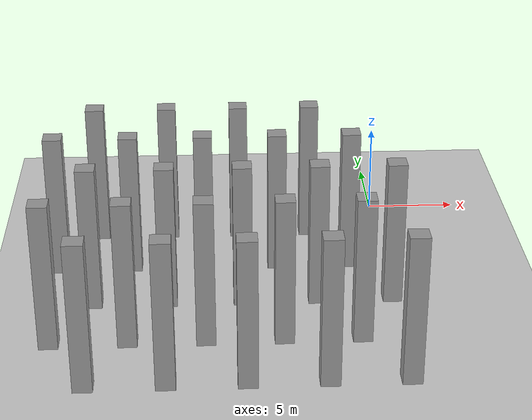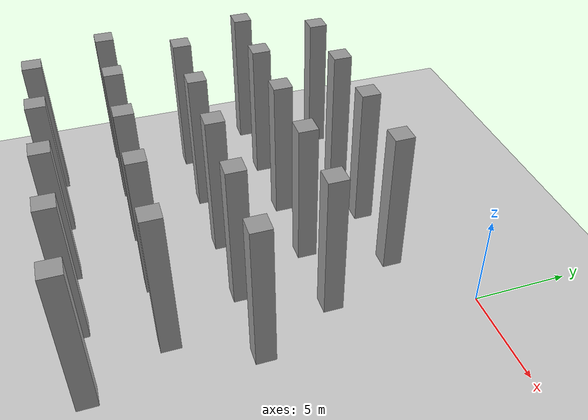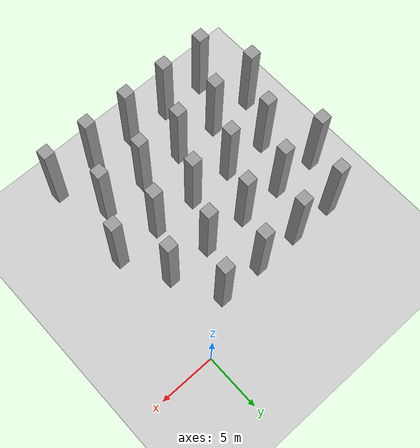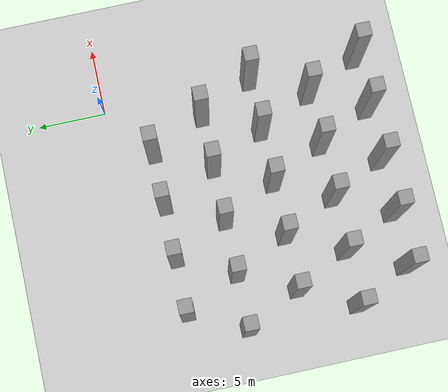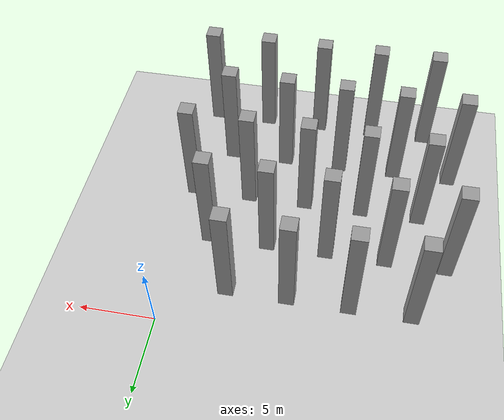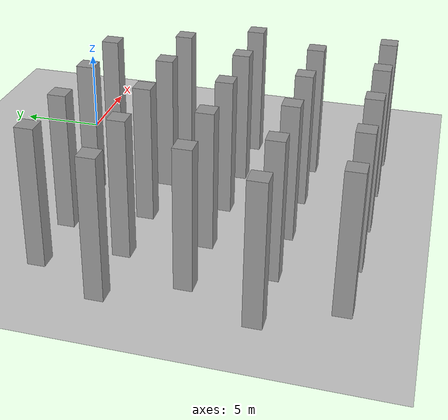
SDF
<sdf version="1.7">
 <world name="default">
  <model name="ground_plane">
   <static>1</static>
   <link name="link">
    <collision name="collision">
     <geometry><plane><normal>0 0 1</normal><size>100 100</size></plane></geometry>
     <surface>
      <contact><collide_bitmask>65535</collide_bitmask></contact>
      <friction><ode><mu>100</mu><mu2>50</mu2></ode></friction>
     </surface>
    </collision>
    <visual name="visual">
     <cast_shadows>0</cast_shadows>
     <geometry><plane><normal>0 0 1</normal><size>100 100</size></plane></geometry>
     <material>
      <script><uri>file://media/materials/scripts/gazebo.material</uri><name>Gazebo/Grey</name></script>
     </material>
    </visual>
   </link>
  </model>
  <model name="unit_box_static1">
   <link name="link">
    <inertial>
     <mass>1</mass>
     <inertia>
      <ixx>0.166667</ixx>
      <ixy>0</ixy>
      <ixz>0</ixz>
      <iyy>0.166667</iyy>
      <iyz>0</iyz>
      <izz>0.166667</izz>
     </inertia>
    </inertial>
    <visual name="visual">
     <geometry><box><size>1 1 8</size></box></geometry>
     <material>
      <script><name>Gazebo/Grey</name><uri>file://media/materials/scripts/gazebo.material</uri></script>
      <shader type="pixel"/>
     </material>
    </visual>
    <collision name="collision">
     <geometry><box><size>1 1 8</size></box></geometry>
     <surface>
      <friction>
       <ode><mu>1</mu><mu2>1</mu2><fdir1>0 0 0</fdir1><slip1>0</slip1><slip2>0</slip2></ode>
       <torsional>
        <coefficient>1</coefficient>
        <patch_radius>0</patch_radius>
        <surface_radius>0</surface_radius>
        <use_patch_radius>1</use_patch_radius>
        <ode><slip>0</slip></ode>
       </torsional>
      </friction>
      <bounce><restitution_coefficient>0</restitution_coefficient><threshold>1e+06</threshold></bounce>
      <contact>
       <collide_without_contact>0</collide_without_contact>
       <collide_without_contact_bitmask>1</collide_without_contact_bitmask>
       <collide_bitmask>1</collide_bitmask>
       <ode>
        <soft_cfm>0</soft_cfm>
        <soft_erp>0.2</soft_erp>
        <kp>1e+13</kp>
        <kd>1</kd>
        <max_vel>0.01</max_vel>
        <min_depth>0</min_depth>
       </ode>
       <bullet>
        <split_impulse>1</split_impulse>
        <split_impulse_penetration_threshold>-0.01</split_impulse_penetration_threshold>
        <soft_cfm>0</soft_cfm>
        <soft_erp>0.2</soft_erp>
        <kp>1e+13</kp>
        <kd>1</kd>
       </bullet>
      </contact>
     </surface>
    </collision>
   </link>
   <static>1</static>
   <pose>-16 -19 4 0 -0 0</pose>
  </model>
  <model name="unit_box_static2">
   <link name="link">
    <inertial>
     <mass>1</mass>
     <inertia>
      <ixx>0.166667</ixx>
      <ixy>0</ixy>
      <ixz>0</ixz>
      <iyy>0.166667</iyy>
      <iyz>0</iyz>
      <izz>0.166667</izz>
     </inertia>
    </inertial>
    <visual name="visual">
     <geometry><box><size>1 1 8</size></box></geometry>
     <material>
      <script><name>Gazebo/Grey</name><uri>file://media/materials/scripts/gazebo.material</uri></script>
      <shader type="pixel"/>
     </material>
    </visual>
    <collision name="collision">
     <geometry><box><size>1 1 8</size></box></geometry>
     <surface>
      <friction>
       <ode><mu>1</mu><mu2>1</mu2><fdir1>0 0 0</fdir1><slip1>0</slip1><slip2>0</slip2></ode>
       <torsional>
        <coefficient>1</coefficient>
        <patch_radius>0</patch_radius>
        <surface_radius>0</surface_radius>
        <use_patch_radius>1</use_patch_radius>
        <ode><slip>0</slip></ode>
       </torsional>
      </friction>
      <bounce><restitution_coefficient>0</restitution_coefficient><threshold>1e+06</threshold></bounce>
      <contact>
       <collide_without_contact>0</collide_without_contact>
       <collide_without_contact_bitmask>1</collide_without_contact_bitmask>
       <collide_bitmask>1</collide_bitmask>
       <ode>
        <soft_cfm>0</soft_cfm>
        <soft_erp>0.2</soft_erp>
        <kp>1e+13</kp>
        <kd>1</kd>
        <max_vel>0.01</max_vel>
        <min_depth>0</min_depth>
       </ode>
       <bullet>
        <split_impulse>1</split_impulse>
        <split_impulse_penetration_threshold>-0.01</split_impulse_penetration_threshold>
        <soft_cfm>0</soft_cfm>
        <soft_erp>0.2</soft_erp>
        <kp>1e+13</kp>
        <kd>1</kd>
       </bullet>
      </contact>
     </surface>
    </collision>
   </link>
   <static>1</static>
   <pose>-12 -19 4 0 -0 0</pose>
  </model>
  <model name="unit_box_static3">
   <link name="link">
    <inertial>
     <mass>1</mass>
     <inertia>
      <ixx>0.166667</ixx>
      <ixy>0</ixy>
      <ixz>0</ixz>
      <iyy>0.166667</iyy>
      <iyz>0</iyz>
      <izz>0.166667</izz>
     </inertia>
    </inertial>
    <visual name="visual">
     <geometry><box><size>1 1 8</size></box></geometry>
     <material>
      <script><name>Gazebo/Grey</name><uri>file://media/materials/scripts/gazebo.material</uri></script>
      <shader type="pixel"/>
     </material>
    </visual>
    <collision name="collision">
     <geometry><box><size>1 1 8</size></box></geometry>
     <surface>
      <friction>
       <ode><mu>1</mu><mu2>1</mu2><fdir1>0 0 0</fdir1><slip1>0</slip1><slip2>0</slip2></ode>
       <torsional>
        <coefficient>1</coefficient>
        <patch_radius>0</patch_radius>
        <surface_radius>0</surface_radius>
        <use_patch_radius>1</use_patch_radius>
        <ode><slip>0</slip></ode>
       </torsional>
      </friction>
      <bounce><restitution_coefficient>0</restitution_coefficient><threshold>1e+06</threshold></bounce>
      <contact>
       <collide_without_contact>0</collide_without_contact>
       <collide_without_contact_bitmask>1</collide_without_contact_bitmask>
       <collide_bitmask>1</collide_bitmask>
       <ode>
        <soft_cfm>0</soft_cfm>
        <soft_erp>0.2</soft_erp>
        <kp>1e+13</kp>
        <kd>1</kd>
        <max_vel>0.01</max_vel>
        <min_depth>0</min_depth>
       </ode>
       <bullet>
        <split_impulse>1</split_impulse>
        <split_impulse_penetration_threshold>-0.01</split_impulse_penetration_threshold>
        <soft_cfm>0</soft_cfm>
        <soft_erp>0.2</soft_erp>
        <kp>1e+13</kp>
        <kd>1</kd>
       </bullet>
      </contact>
     </surface>
    </collision>
   </link>
   <static>1</static>
   <pose>-8 -19 4 0 -0 0</pose>
  </model>
  <model name="unit_box_static4">
   <link name="link">
    <inertial>
     <mass>1</mass>
     <inertia>
      <ixx>0.166667</ixx>
      <ixy>0</ixy>
      <ixz>0</ixz>
      <iyy>0.166667</iyy>
      <iyz>0</iyz>
      <izz>0.166667</izz>
     </inertia>
    </inertial>
    <visual name="visual">
     <geometry><box><size>1 1 8</size></box></geometry>
     <material>
      <script><name>Gazebo/Grey</name><uri>file://media/materials/scripts/gazebo.material</uri></script>
      <shader type="pixel"/>
     </material>
    </visual>
    <collision name="collision">
     <geometry><box><size>1 1 8</size></box></geometry>
     <surface>
      <friction>
       <ode><mu>1</mu><mu2>1</mu2><fdir1>0 0 0</fdir1><slip1>0</slip1><slip2>0</slip2></ode>
       <torsional>
        <coefficient>1</coefficient>
        <patch_radius>0</patch_radius>
        <surface_radius>0</surface_radius>
        <use_patch_radius>1</use_patch_radius>
        <ode><slip>0</slip></ode>
       </torsional>
      </friction>
      <bounce><restitution_coefficient>0</restitution_coefficient><threshold>1e+06</threshold></bounce>
      <contact>
       <collide_without_contact>0</collide_without_contact>
       <collide_without_contact_bitmask>1</collide_without_contact_bitmask>
       <collide_bitmask>1</collide_bitmask>
       <ode>
        <soft_cfm>0</soft_cfm>
        <soft_erp>0.2</soft_erp>
        <kp>1e+13</kp>
        <kd>1</kd>
        <max_vel>0.01</max_vel>
        <min_depth>0</min_depth>
       </ode>
       <bullet>
        <split_impulse>1</split_impulse>
        <split_impulse_penetration_threshold>-0.01</split_impulse_penetration_threshold>
        <soft_cfm>0</soft_cfm>
        <soft_erp>0.2</soft_erp>
        <kp>1e+13</kp>
        <kd>1</kd>
       </bullet>
      </contact>
     </surface>
    </collision>
   </link>
   <static>1</static>
   <pose>-4 -19 4 0 -0 0</pose>
  </model>
  <model name="unit_box_static5">
   <link name="link">
    <inertial>
     <mass>1</mass>
     <inertia>
      <ixx>0.166667</ixx>
      <ixy>0</ixy>
      <ixz>0</ixz>
      <iyy>0.166667</iyy>
      <iyz>0</iyz>
      <izz>0.166667</izz>
     </inertia>
    </inertial>
    <visual name="visual">
     <geometry><box><size>1 1 8</size></box></geometry>
     <material>
      <script><name>Gazebo/Grey</name><uri>file://media/materials/scripts/gazebo.material</uri></script>
      <shader type="pixel"/>
     </material>
    </visual>
    <collision name="collision">
     <geometry><box><size>1 1 8</size></box></geometry>
     <surface>
      <friction>
       <ode><mu>1</mu><mu2>1</mu2><fdir1>0 0 0</fdir1><slip1>0</slip1><slip2>0</slip2></ode>
       <torsional>
        <coefficient>1</coefficient>
        <patch_radius>0</patch_radius>
        <surface_radius>0</surface_radius>
        <use_patch_radius>1</use_patch_radius>
        <ode><slip>0</slip></ode>
       </torsional>
      </friction>
      <bounce><restitution_coefficient>0</restitution_coefficient><threshold>1e+06</threshold></bounce>
      <contact>
       <collide_without_contact>0</collide_without_contact>
       <collide_without_contact_bitmask>1</collide_without_contact_bitmask>
       <collide_bitmask>1</collide_bitmask>
       <ode>
        <soft_cfm>0</soft_cfm>
        <soft_erp>0.2</soft_erp>
        <kp>1e+13</kp>
        <kd>1</kd>
        <max_vel>0.01</max_vel>
        <min_depth>0</min_depth>
       </ode>
       <bullet>
        <split_impulse>1</split_impulse>
        <split_impulse_penetration_threshold>-0.01</split_impulse_penetration_threshold>
        <soft_cfm>0</soft_cfm>
        <soft_erp>0.2</soft_erp>
        <kp>1e+13</kp>
        <kd>1</kd>
       </bullet>
      </contact>
     </surface>
    </collision>
   </link>
   <static>1</static>
   <pose>0 -19 4 0 -0 0</pose>
  </model>
  <model name="unit_box_static10">
   <link name="link">
    <inertial>
     <mass>1</mass>
     <inertia>
      <ixx>0.166667</ixx>
      <ixy>0</ixy>
      <ixz>0</ixz>
      <iyy>0.166667</iyy>
      <iyz>0</iyz>
      <izz>0.166667</izz>
     </inertia>
    </inertial>
    <visual name="visual">
     <geometry><box><size>1 1 8</size></box></geometry>
     <material>
      <script><name>Gazebo/Grey</name><uri>file://media/materials/scripts/gazebo.material</uri></script>
      <shader type="pixel"/>
     </material>
    </visual>
    <collision name="collision">
     <geometry><box><size>1 1 8</size></box></geometry>
     <surface>
      <friction>
       <ode><mu>1</mu><mu2>1</mu2><fdir1>0 0 0</fdir1><slip1>0</slip1><slip2>0</slip2></ode>
       <torsional>
        <coefficient>1</coefficient>
        <patch_radius>0</patch_radius>
        <surface_radius>0</surface_radius>
        <use_patch_radius>1</use_patch_radius>
        <ode><slip>0</slip></ode>
       </torsional>
      </friction>
      <bounce><restitution_coefficient>0</restitution_coefficient><threshold>1e+06</threshold></bounce>
      <contact>
       <collide_without_contact>0</collide_without_contact>
       <collide_without_contact_bitmask>1</collide_without_contact_bitmask>
       <collide_bitmask>1</collide_bitmask>
       <ode>
        <soft_cfm>0</soft_cfm>
        <soft_erp>0.2</soft_erp>
        <kp>1e+13</kp>
        <kd>1</kd>
        <max_vel>0.01</max_vel>
        <min_depth>0</min_depth>
       </ode>
       <bullet>
        <split_impulse>1</split_impulse>
        <split_impulse_penetration_threshold>-0.01</split_impulse_penetration_threshold>
        <soft_cfm>0</soft_cfm>
        <soft_erp>0.2</soft_erp>
        <kp>1e+13</kp>
        <kd>1</kd>
       </bullet>
      </contact>
     </surface>
    </collision>
   </link>
   <static>1</static>
   <pose>-18 -15 4 0 -0 0</pose>
  </model>
  <model name="unit_box_static11">
   <link name="link">
    <inertial>
     <mass>1</mass>
     <inertia>
      <ixx>0.166667</ixx>
      <ixy>0</ixy>
      <ixz>0</ixz>
      <iyy>0.166667</iyy>
      <iyz>0</iyz>
      <izz>0.166667</izz>
     </inertia>
    </inertial>
    <visual name="visual">
     <geometry><box><size>1 1 8</size></box></geometry>
     <material>
      <script><name>Gazebo/Grey</name><uri>file://media/materials/scripts/gazebo.material</uri></script>
      <shader type="pixel"/>
     </material>
    </visual>
    <collision name="collision">
     <geometry><box><size>1 1 8</size></box></geometry>
     <surface>
      <friction>
       <ode><mu>1</mu><mu2>1</mu2><fdir1>0 0 0</fdir1><slip1>0</slip1><slip2>0</slip2></ode>
       <torsional>
        <coefficient>1</coefficient>
        <patch_radius>0</patch_radius>
        <surface_radius>0</surface_radius>
        <use_patch_radius>1</use_patch_radius>
        <ode><slip>0</slip></ode>
       </torsional>
      </friction>
      <bounce><restitution_coefficient>0</restitution_coefficient><threshold>1e+06</threshold></bounce>
      <contact>
       <collide_without_contact>0</collide_without_contact>
       <collide_without_contact_bitmask>1</collide_without_contact_bitmask>
       <collide_bitmask>1</collide_bitmask>
       <ode>
        <soft_cfm>0</soft_cfm>
        <soft_erp>0.2</soft_erp>
        <kp>1e+13</kp>
        <kd>1</kd>
        <max_vel>0.01</max_vel>
        <min_depth>0</min_depth>
       </ode>
       <bullet>
        <split_impulse>1</split_impulse>
        <split_impulse_penetration_threshold>-0.01</split_impulse_penetration_threshold>
        <soft_cfm>0</soft_cfm>
        <soft_erp>0.2</soft_erp>
        <kp>1e+13</kp>
        <kd>1</kd>
       </bullet>
      </contact>
     </surface>
    </collision>
   </link>
   <static>1</static>
   <pose>-14 -15 4 0 -0 0</pose>
  </model>
  <model name="unit_box_static12">
   <link name="link">
    <inertial>
     <mass>1</mass>
     <inertia>
      <ixx>0.166667</ixx>
      <ixy>0</ixy>
      <ixz>0</ixz>
      <iyy>0.166667</iyy>
      <iyz>0</iyz>
      <izz>0.166667</izz>
     </inertia>
    </inertial>
    <visual name="visual">
     <geometry><box><size>1 1 8</size></box></geometry>
     <material>
      <script><name>Gazebo/Grey</name><uri>file://media/materials/scripts/gazebo.material</uri></script>
      <shader type="pixel"/>
     </material>
    </visual>
    <collision name="collision">
     <geometry><box><size>1 1 8</size></box></geometry>
     <surface>
      <friction>
       <ode><mu>1</mu><mu2>1</mu2><fdir1>0 0 0</fdir1><slip1>0</slip1><slip2>0</slip2></ode>
       <torsional>
        <coefficient>1</coefficient>
        <patch_radius>0</patch_radius>
        <surface_radius>0</surface_radius>
        <use_patch_radius>1</use_patch_radius>
        <ode><slip>0</slip></ode>
       </torsional>
      </friction>
      <bounce><restitution_coefficient>0</restitution_coefficient><threshold>1e+06</threshold></bounce>
      <contact>
       <collide_without_contact>0</collide_without_contact>
       <collide_without_contact_bitmask>1</collide_without_contact_bitmask>
       <collide_bitmask>1</collide_bitmask>
       <ode>
        <soft_cfm>0</soft_cfm>
        <soft_erp>0.2</soft_erp>
        <kp>1e+13</kp>
        <kd>1</kd>
        <max_vel>0.01</max_vel>
        <min_depth>0</min_depth>
       </ode>
       <bullet>
        <split_impulse>1</split_impulse>
        <split_impulse_penetration_threshold>-0.01</split_impulse_penetration_threshold>
        <soft_cfm>0</soft_cfm>
        <soft_erp>0.2</soft_erp>
        <kp>1e+13</kp>
        <kd>1</kd>
       </bullet>
      </contact>
     </surface>
    </collision>
   </link>
   <static>1</static>
   <pose>-10 -15 4 0 -0 0</pose>
  </model>
  <model name="unit_box_static13">
   <link name="link">
    <inertial>
     <mass>1</mass>
     <inertia>
      <ixx>0.166667</ixx>
      <ixy>0</ixy>
      <ixz>0</ixz>
      <iyy>0.166667</iyy>
      <iyz>0</iyz>
      <izz>0.166667</izz>
     </inertia>
    </inertial>
    <visual name="visual">
     <geometry><box><size>1 1 8</size></box></geometry>
     <material>
      <script><name>Gazebo/Grey</name><uri>file://media/materials/scripts/gazebo.material</uri></script>
      <shader type="pixel"/>
     </material>
    </visual>
    <collision name="collision">
     <geometry><box><size>1 1 8</size></box></geometry>
     <surface>
      <friction>
       <ode><mu>1</mu><mu2>1</mu2><fdir1>0 0 0</fdir1><slip1>0</slip1><slip2>0</slip2></ode>
       <torsional>
        <coefficient>1</coefficient>
        <patch_radius>0</patch_radius>
        <surface_radius>0</surface_radius>
        <use_patch_radius>1</use_patch_radius>
        <ode><slip>0</slip></ode>
       </torsional>
      </friction>
      <bounce><restitution_coefficient>0</restitution_coefficient><threshold>1e+06</threshold></bounce>
      <contact>
       <collide_without_contact>0</collide_without_contact>
       <collide_without_contact_bitmask>1</collide_without_contact_bitmask>
       <collide_bitmask>1</collide_bitmask>
       <ode>
        <soft_cfm>0</soft_cfm>
        <soft_erp>0.2</soft_erp>
        <kp>1e+13</kp>
        <kd>1</kd>
        <max_vel>0.01</max_vel>
        <min_depth>0</min_depth>
       </ode>
       <bullet>
        <split_impulse>1</split_impulse>
        <split_impulse_penetration_threshold>-0.01</split_impulse_penetration_threshold>
        <soft_cfm>0</soft_cfm>
        <soft_erp>0.2</soft_erp>
        <kp>1e+13</kp>
        <kd>1</kd>
       </bullet>
      </contact>
     </surface>
    </collision>
   </link>
   <static>1</static>
   <pose>-6 -15 4 0 -0 0</pose>
  </model>
  <model name="unit_box_static14">
   <link name="link">
    <inertial>
     <mass>1</mass>
     <inertia>
      <ixx>0.166667</ixx>
      <ixy>0</ixy>
      <ixz>0</ixz>
      <iyy>0.166667</iyy>
      <iyz>0</iyz>
      <izz>0.166667</izz>
     </inertia>
    </inertial>
    <visual name="visual">
     <geometry><box><size>1 1 8</size></box></geometry>
     <material>
      <script><name>Gazebo/Grey</name><uri>file://media/materials/scripts/gazebo.material</uri></script>
      <shader type="pixel"/>
     </material>
    </visual>
    <collision name="collision">
     <geometry><box><size>1 1 8</size></box></geometry>
     <surface>
      <friction>
       <ode><mu>1</mu><mu2>1</mu2><fdir1>0 0 0</fdir1><slip1>0</slip1><slip2>0</slip2></ode>
       <torsional>
        <coefficient>1</coefficient>
        <patch_radius>0</patch_radius>
        <surface_radius>0</surface_radius>
        <use_patch_radius>1</use_patch_radius>
        <ode><slip>0</slip></ode>
       </torsional>
      </friction>
      <bounce><restitution_coefficient>0</restitution_coefficient><threshold>1e+06</threshold></bounce>
      <contact>
       <collide_without_contact>0</collide_without_contact>
       <collide_without_contact_bitmask>1</collide_without_contact_bitmask>
       <collide_bitmask>1</collide_bitmask>
       <ode>
        <soft_cfm>0</soft_cfm>
        <soft_erp>0.2</soft_erp>
        <kp>1e+13</kp>
        <kd>1</kd>
        <max_vel>0.01</max_vel>
        <min_depth>0</min_depth>
       </ode>
       <bullet>
        <split_impulse>1</split_impulse>
        <split_impulse_penetration_threshold>-0.01</split_impulse_penetration_threshold>
        <soft_cfm>0</soft_cfm>
        <soft_erp>0.2</soft_erp>
        <kp>1e+13</kp>
        <kd>1</kd>
       </bullet>
      </contact>
     </surface>
    </collision>
   </link>
   <static>1</static>
   <pose>-2 -15 4 0 -0 0</pose>
  </model>
  <model name="unit_box_static20">
   <link name="link">
    <inertial>
     <mass>1</mass>
     <inertia>
      <ixx>0.166667</ixx>
      <ixy>0</ixy>
      <ixz>0</ixz>
      <iyy>0.166667</iyy>
      <iyz>0</iyz>
      <izz>0.166667</izz>
     </inertia>
    </inertial>
    <visual name="visual">
     <geometry><box><size>1 1 8</size></box></geometry>
     <material>
      <script><name>Gazebo/Grey</name><uri>file://media/materials/scripts/gazebo.material</uri></script>
      <shader type="pixel"/>
     </material>
    </visual>
    <collision name="collision">
     <geometry><box><size>1 1 8</size></box></geometry>
     <surface>
      <friction>
       <ode><mu>1</mu><mu2>1</mu2><fdir1>0 0 0</fdir1><slip1>0</slip1><slip2>0</slip2></ode>
       <torsional>
        <coefficient>1</coefficient>
        <patch_radius>0</patch_radius>
        <surface_radius>0</surface_radius>
        <use_patch_radius>1</use_patch_radius>
        <ode><slip>0</slip></ode>
       </torsional>
      </friction>
      <bounce><restitution_coefficient>0</restitution_coefficient><threshold>1e+06</threshold></bounce>
      <contact>
       <collide_without_contact>0</collide_without_contact>
       <collide_without_contact_bitmask>1</collide_without_contact_bitmask>
       <collide_bitmask>1</collide_bitmask>
       <ode>
        <soft_cfm>0</soft_cfm>
        <soft_erp>0.2</soft_erp>
        <kp>1e+13</kp>
        <kd>1</kd>
        <max_vel>0.01</max_vel>
        <min_depth>0</min_depth>
       </ode>
       <bullet>
        <split_impulse>1</split_impulse>
        <split_impulse_penetration_threshold>-0.01</split_impulse_penetration_threshold>
        <soft_cfm>0</soft_cfm>
        <soft_erp>0.2</soft_erp>
        <kp>1e+13</kp>
        <kd>1</kd>
       </bullet>
      </contact>
     </surface>
    </collision>
   </link>
   <static>1</static>
   <pose>-16 -11 4 0 -0 0</pose>
  </model>
  <model name="unit_box_static21">
   <link name="link">
    <inertial>
     <mass>1</mass>
     <inertia>
      <ixx>0.166667</ixx>
      <ixy>0</ixy>
      <ixz>0</ixz>
      <iyy>0.166667</iyy>
      <iyz>0</iyz>
      <izz>0.166667</izz>
     </inertia>
    </inertial>
    <visual name="visual">
     <geometry><box><size>1 1 8</size></box></geometry>
     <material>
      <script><name>Gazebo/Grey</name><uri>file://media/materials/scripts/gazebo.material</uri></script>
      <shader type="pixel"/>
     </material>
    </visual>
    <collision name="collision">
     <geometry><box><size>1 1 8</size></box></geometry>
     <surface>
      <friction>
       <ode><mu>1</mu><mu2>1</mu2><fdir1>0 0 0</fdir1><slip1>0</slip1><slip2>0</slip2></ode>
       <torsional>
        <coefficient>1</coefficient>
        <patch_radius>0</patch_radius>
        <surface_radius>0</surface_radius>
        <use_patch_radius>1</use_patch_radius>
        <ode><slip>0</slip></ode>
       </torsional>
      </friction>
      <bounce><restitution_coefficient>0</restitution_coefficient><threshold>1e+06</threshold></bounce>
      <contact>
       <collide_without_contact>0</collide_without_contact>
       <collide_without_contact_bitmask>1</collide_without_contact_bitmask>
       <collide_bitmask>1</collide_bitmask>
       <ode>
        <soft_cfm>0</soft_cfm>
        <soft_erp>0.2</soft_erp>
        <kp>1e+13</kp>
        <kd>1</kd>
        <max_vel>0.01</max_vel>
        <min_depth>0</min_depth>
       </ode>
       <bullet>
        <split_impulse>1</split_impulse>
        <split_impulse_penetration_threshold>-0.01</split_impulse_penetration_threshold>
        <soft_cfm>0</soft_cfm>
        <soft_erp>0.2</soft_erp>
        <kp>1e+13</kp>
        <kd>1</kd>
       </bullet>
      </contact>
     </surface>
    </collision>
   </link>
   <static>1</static>
   <pose>-12 -11 4 0 -0 0</pose>
  </model>
  <model name="unit_box_static22">
   <link name="link">
    <inertial>
     <mass>1</mass>
     <inertia>
      <ixx>0.166667</ixx>
      <ixy>0</ixy>
      <ixz>0</ixz>
      <iyy>0.166667</iyy>
      <iyz>0</iyz>
      <izz>0.166667</izz>
     </inertia>
    </inertial>
    <visual name="visual">
     <geometry><box><size>1 1 8</size></box></geometry>
     <material>
      <script><name>Gazebo/Grey</name><uri>file://media/materials/scripts/gazebo.material</uri></script>
      <shader type="pixel"/>
     </material>
    </visual>
    <collision name="collision">
     <geometry><box><size>1 1 8</size></box></geometry>
     <surface>
      <friction>
       <ode><mu>1</mu><mu2>1</mu2><fdir1>0 0 0</fdir1><slip1>0</slip1><slip2>0</slip2></ode>
       <torsional>
        <coefficient>1</coefficient>
        <patch_radius>0</patch_radius>
        <surface_radius>0</surface_radius>
        <use_patch_radius>1</use_patch_radius>
        <ode><slip>0</slip></ode>
       </torsional>
      </friction>
      <bounce><restitution_coefficient>0</restitution_coefficient><threshold>1e+06</threshold></bounce>
      <contact>
       <collide_without_contact>0</collide_without_contact>
       <collide_without_contact_bitmask>1</collide_without_contact_bitmask>
       <collide_bitmask>1</collide_bitmask>
       <ode>
        <soft_cfm>0</soft_cfm>
        <soft_erp>0.2</soft_erp>
        <kp>1e+13</kp>
        <kd>1</kd>
        <max_vel>0.01</max_vel>
        <min_depth>0</min_depth>
       </ode>
       <bullet>
        <split_impulse>1</split_impulse>
        <split_impulse_penetration_threshold>-0.01</split_impulse_penetration_threshold>
        <soft_cfm>0</soft_cfm>
        <soft_erp>0.2</soft_erp>
        <kp>1e+13</kp>
        <kd>1</kd>
       </bullet>
      </contact>
     </surface>
    </collision>
   </link>
   <static>1</static>
   <pose>-8 -11 4 0 -0 0</pose>
  </model>
  <model name="unit_box_static23">
   <link name="link">
    <inertial>
     <mass>1</mass>
     <inertia>
      <ixx>0.166667</ixx>
      <ixy>0</ixy>
      <ixz>0</ixz>
      <iyy>0.166667</iyy>
      <iyz>0</iyz>
      <izz>0.166667</izz>
     </inertia>
    </inertial>
    <visual name="visual">
     <geometry><box><size>1 1 8</size></box></geometry>
     <material>
      <script><name>Gazebo/Grey</name><uri>file://media/materials/scripts/gazebo.material</uri></script>
      <shader type="pixel"/>
     </material>
    </visual>
    <collision name="collision">
     <geometry><box><size>1 1 8</size></box></geometry>
     <surface>
      <friction>
       <ode><mu>1</mu><mu2>1</mu2><fdir1>0 0 0</fdir1><slip1>0</slip1><slip2>0</slip2></ode>
       <torsional>
        <coefficient>1</coefficient>
        <patch_radius>0</patch_radius>
        <surface_radius>0</surface_radius>
        <use_patch_radius>1</use_patch_radius>
        <ode><slip>0</slip></ode>
       </torsional>
      </friction>
      <bounce><restitution_coefficient>0</restitution_coefficient><threshold>1e+06</threshold></bounce>
      <contact>
       <collide_without_contact>0</collide_without_contact>
       <collide_without_contact_bitmask>1</collide_without_contact_bitmask>
       <collide_bitmask>1</collide_bitmask>
       <ode>
        <soft_cfm>0</soft_cfm>
        <soft_erp>0.2</soft_erp>
        <kp>1e+13</kp>
        <kd>1</kd>
        <max_vel>0.01</max_vel>
        <min_depth>0</min_depth>
       </ode>
       <bullet>
        <split_impulse>1</split_impulse>
        <split_impulse_penetration_threshold>-0.01</split_impulse_penetration_threshold>
        <soft_cfm>0</soft_cfm>
        <soft_erp>0.2</soft_erp>
        <kp>1e+13</kp>
        <kd>1</kd>
       </bullet>
      </contact>
     </surface>
    </collision>
   </link>
   <static>1</static>
   <pose>-4 -11 4 0 -0 0</pose>
  </model>
  <model name="unit_box_static24">
   <link name="link">
    <inertial>
     <mass>1</mass>
     <inertia>
      <ixx>0.166667</ixx>
      <ixy>0</ixy>
      <ixz>0</ixz>
      <iyy>0.166667</iyy>
      <iyz>0</iyz>
      <izz>0.166667</izz>
     </inertia>
    </inertial>
    <visual name="visual">
     <geometry><box><size>1 1 8</size></box></geometry>
     <material>
      <script><name>Gazebo/Grey</name><uri>file://media/materials/scripts/gazebo.material</uri></script>
      <shader type="pixel"/>
     </material>
    </visual>
    <collision name="collision">
     <geometry><box><size>1 1 8</size></box></geometry>
     <surface>
      <friction>
       <ode><mu>1</mu><mu2>1</mu2><fdir1>0 0 0</fdir1><slip1>0</slip1><slip2>0</slip2></ode>
       <torsional>
        <coefficient>1</coefficient>
        <patch_radius>0</patch_radius>
        <surface_radius>0</surface_radius>
        <use_patch_radius>1</use_patch_radius>
        <ode><slip>0</slip></ode>
       </torsional>
      </friction>
      <bounce><restitution_coefficient>0</restitution_coefficient><threshold>1e+06</threshold></bounce>
      <contact>
       <collide_without_contact>0</collide_without_contact>
       <collide_without_contact_bitmask>1</collide_without_contact_bitmask>
       <collide_bitmask>1</collide_bitmask>
       <ode>
        <soft_cfm>0</soft_cfm>
        <soft_erp>0.2</soft_erp>
        <kp>1e+13</kp>
        <kd>1</kd>
        <max_vel>0.01</max_vel>
        <min_depth>0</min_depth>
       </ode>
       <bullet>
        <split_impulse>1</split_impulse>
        <split_impulse_penetration_threshold>-0.01</split_impulse_penetration_threshold>
        <soft_cfm>0</soft_cfm>
        <soft_erp>0.2</soft_erp>
        <kp>1e+13</kp>
        <kd>1</kd>
       </bullet>
      </contact>
     </surface>
    </collision>
   </link>
   <static>1</static>
   <pose>0 -11 4 0 -0 0</pose>
  </model>
  <model name="unit_box_static29">
   <link name="link">
    <inertial>
     <mass>1</mass>
     <inertia>
      <ixx>0.166667</ixx>
      <ixy>0</ixy>
      <ixz>0</ixz>
      <iyy>0.166667</iyy>
      <iyz>0</iyz>
      <izz>0.166667</izz>
     </inertia>
    </inertial>
    <visual name="visual">
     <geometry><box><size>1 1 8</size></box></geometry>
     <material>
      <script><name>Gazebo/Grey</name><uri>file://media/materials/scripts/gazebo.material</uri></script>
      <shader type="pixel"/>
     </material>
    </visual>
    <collision name="collision">
     <geometry><box><size>1 1 8</size></box></geometry>
     <surface>
      <friction>
       <ode><mu>1</mu><mu2>1</mu2><fdir1>0 0 0</fdir1><slip1>0</slip1><slip2>0</slip2></ode>
       <torsional>
        <coefficient>1</coefficient>
        <patch_radius>0</patch_radius>
        <surface_radius>0</surface_radius>
        <use_patch_radius>1</use_patch_radius>
        <ode><slip>0</slip></ode>
       </torsional>
      </friction>
      <bounce><restitution_coefficient>0</restitution_coefficient><threshold>1e+06</threshold></bounce>
      <contact>
       <collide_without_contact>0</collide_without_contact>
       <collide_without_contact_bitmask>1</collide_without_contact_bitmask>
       <collide_bitmask>1</collide_bitmask>
       <ode>
        <soft_cfm>0</soft_cfm>
        <soft_erp>0.2</soft_erp>
        <kp>1e+13</kp>
        <kd>1</kd>
        <max_vel>0.01</max_vel>
        <min_depth>0</min_depth>
       </ode>
       <bullet>
        <split_impulse>1</split_impulse>
        <split_impulse_penetration_threshold>-0.01</split_impulse_penetration_threshold>
        <soft_cfm>0</soft_cfm>
        <soft_erp>0.2</soft_erp>
        <kp>1e+13</kp>
        <kd>1</kd>
       </bullet>
      </contact>
     </surface>
    </collision>
   </link>
   <static>1</static>
   <pose>-18 -7 4 0 -0 0</pose>
  </model>
  <model name="unit_box_static30">
   <link name="link">
    <inertial>
     <mass>1</mass>
     <inertia>
      <ixx>0.166667</ixx>
      <ixy>0</ixy>
      <ixz>0</ixz>
      <iyy>0.166667</iyy>
      <iyz>0</iyz>
      <izz>0.166667</izz>
     </inertia>
    </inertial>
    <visual name="visual">
     <geometry><box><size>1 1 8</size></box></geometry>
     <material>
      <script><name>Gazebo/Grey</name><uri>file://media/materials/scripts/gazebo.material</uri></script>
      <shader type="pixel"/>
     </material>
    </visual>
    <collision name="collision">
     <geometry><box><size>1 1 8</size></box></geometry>
     <surface>
      <friction>
       <ode><mu>1</mu><mu2>1</mu2><fdir1>0 0 0</fdir1><slip1>0</slip1><slip2>0</slip2></ode>
       <torsional>
        <coefficient>1</coefficient>
        <patch_radius>0</patch_radius>
        <surface_radius>0</surface_radius>
        <use_patch_radius>1</use_patch_radius>
        <ode><slip>0</slip></ode>
       </torsional>
      </friction>
      <bounce><restitution_coefficient>0</restitution_coefficient><threshold>1e+06</threshold></bounce>
      <contact>
       <collide_without_contact>0</collide_without_contact>
       <collide_without_contact_bitmask>1</collide_without_contact_bitmask>
       <collide_bitmask>1</collide_bitmask>
       <ode>
        <soft_cfm>0</soft_cfm>
        <soft_erp>0.2</soft_erp>
        <kp>1e+13</kp>
        <kd>1</kd>
        <max_vel>0.01</max_vel>
        <min_depth>0</min_depth>
       </ode>
       <bullet>
        <split_impulse>1</split_impulse>
        <split_impulse_penetration_threshold>-0.01</split_impulse_penetration_threshold>
        <soft_cfm>0</soft_cfm>
        <soft_erp>0.2</soft_erp>
        <kp>1e+13</kp>
        <kd>1</kd>
       </bullet>
      </contact>
     </surface>
    </collision>
   </link>
   <static>1</static>
   <pose>-14 -7 4 0 -0 0</pose>
  </model>
  <model name="unit_box_static31">
   <link name="link">
    <inertial>
     <mass>1</mass>
     <inertia>
      <ixx>0.166667</ixx>
      <ixy>0</ixy>
      <ixz>0</ixz>
      <iyy>0.166667</iyy>
      <iyz>0</iyz>
      <izz>0.166667</izz>
     </inertia>
    </inertial>
    <visual name="visual">
     <geometry><box><size>1 1 8</size></box></geometry>
     <material>
      <script><name>Gazebo/Grey</name><uri>file://media/materials/scripts/gazebo.material</uri></script>
      <shader type="pixel"/>
     </material>
    </visual>
    <collision name="collision">
     <geometry><box><size>1 1 8</size></box></geometry>
     <surface>
      <friction>
       <ode><mu>1</mu><mu2>1</mu2><fdir1>0 0 0</fdir1><slip1>0</slip1><slip2>0</slip2></ode>
       <torsional>
        <coefficient>1</coefficient>
        <patch_radius>0</patch_radius>
        <surface_radius>0</surface_radius>
        <use_patch_radius>1</use_patch_radius>
        <ode><slip>0</slip></ode>
       </torsional>
      </friction>
      <bounce><restitution_coefficient>0</restitution_coefficient><threshold>1e+06</threshold></bounce>
      <contact>
       <collide_without_contact>0</collide_without_contact>
       <collide_without_contact_bitmask>1</collide_without_contact_bitmask>
       <collide_bitmask>1</collide_bitmask>
       <ode>
        <soft_cfm>0</soft_cfm>
        <soft_erp>0.2</soft_erp>
        <kp>1e+13</kp>
        <kd>1</kd>
        <max_vel>0.01</max_vel>
        <min_depth>0</min_depth>
       </ode>
       <bullet>
        <split_impulse>1</split_impulse>
        <split_impulse_penetration_threshold>-0.01</split_impulse_penetration_threshold>
        <soft_cfm>0</soft_cfm>
        <soft_erp>0.2</soft_erp>
        <kp>1e+13</kp>
        <kd>1</kd>
       </bullet>
      </contact>
     </surface>
    </collision>
   </link>
   <static>1</static>
   <pose>-10 -7 4 0 -0 0</pose>
  </model>
  <model name="unit_box_static32">
   <link name="link">
    <inertial>
     <mass>1</mass>
     <inertia>
      <ixx>0.166667</ixx>
      <ixy>0</ixy>
      <ixz>0</ixz>
      <iyy>0.166667</iyy>
      <iyz>0</iyz>
      <izz>0.166667</izz>
     </inertia>
    </inertial>
    <visual name="visual">
     <geometry><box><size>1 1 8</size></box></geometry>
     <material>
      <script><name>Gazebo/Grey</name><uri>file://media/materials/scripts/gazebo.material</uri></script>
      <shader type="pixel"/>
     </material>
    </visual>
    <collision name="collision">
     <geometry><box><size>1 1 8</size></box></geometry>
     <surface>
      <friction>
       <ode><mu>1</mu><mu2>1</mu2><fdir1>0 0 0</fdir1><slip1>0</slip1><slip2>0</slip2></ode>
       <torsional>
        <coefficient>1</coefficient>
        <patch_radius>0</patch_radius>
        <surface_radius>0</surface_radius>
        <use_patch_radius>1</use_patch_radius>
        <ode><slip>0</slip></ode>
       </torsional>
      </friction>
      <bounce><restitution_coefficient>0</restitution_coefficient><threshold>1e+06</threshold></bounce>
      <contact>
       <collide_without_contact>0</collide_without_contact>
       <collide_without_contact_bitmask>1</collide_without_contact_bitmask>
       <collide_bitmask>1</collide_bitmask>
       <ode>
        <soft_cfm>0</soft_cfm>
        <soft_erp>0.2</soft_erp>
        <kp>1e+13</kp>
        <kd>1</kd>
        <max_vel>0.01</max_vel>
        <min_depth>0</min_depth>
       </ode>
       <bullet>
        <split_impulse>1</split_impulse>
        <split_impulse_penetration_threshold>-0.01</split_impulse_penetration_threshold>
        <soft_cfm>0</soft_cfm>
        <soft_erp>0.2</soft_erp>
        <kp>1e+13</kp>
        <kd>1</kd>
       </bullet>
      </contact>
     </surface>
    </collision>
   </link>
   <static>1</static>
   <pose>-6 -7 4 0 -0 0</pose>
  </model>
  <model name="unit_box_static33">
   <link name="link">
    <inertial>
     <mass>1</mass>
     <inertia>
      <ixx>0.166667</ixx>
      <ixy>0</ixy>
      <ixz>0</ixz>
      <iyy>0.166667</iyy>
      <iyz>0</iyz>
      <izz>0.166667</izz>
     </inertia>
    </inertial>
    <visual name="visual">
     <geometry><box><size>1 1 8</size></box></geometry>
     <material>
      <script><name>Gazebo/Grey</name><uri>file://media/materials/scripts/gazebo.material</uri></script>
      <shader type="pixel"/>
     </material>
    </visual>
    <collision name="collision">
     <geometry><box><size>1 1 8</size></box></geometry>
     <surface>
      <friction>
       <ode><mu>1</mu><mu2>1</mu2><fdir1>0 0 0</fdir1><slip1>0</slip1><slip2>0</slip2></ode>
       <torsional>
        <coefficient>1</coefficient>
        <patch_radius>0</patch_radius>
        <surface_radius>0</surface_radius>
        <use_patch_radius>1</use_patch_radius>
        <ode><slip>0</slip></ode>
       </torsional>
      </friction>
      <bounce><restitution_coefficient>0</restitution_coefficient><threshold>1e+06</threshold></bounce>
      <contact>
       <collide_without_contact>0</collide_without_contact>
       <collide_without_contact_bitmask>1</collide_without_contact_bitmask>
       <collide_bitmask>1</collide_bitmask>
       <ode>
        <soft_cfm>0</soft_cfm>
        <soft_erp>0.2</soft_erp>
        <kp>1e+13</kp>
        <kd>1</kd>
        <max_vel>0.01</max_vel>
        <min_depth>0</min_depth>
       </ode>
       <bullet>
        <split_impulse>1</split_impulse>
        <split_impulse_penetration_threshold>-0.01</split_impulse_penetration_threshold>
        <soft_cfm>0</soft_cfm>
        <soft_erp>0.2</soft_erp>
        <kp>1e+13</kp>
        <kd>1</kd>
       </bullet>
      </contact>
     </surface>
    </collision>
   </link>
   <static>1</static>
   <pose>-2 -7 4 0 -0 0</pose>
  </model>
  <model name="unit_box_static39">
   <link name="link">
    <inertial>
     <mass>1</mass>
     <inertia>
      <ixx>0.166667</ixx>
      <ixy>0</ixy>
      <ixz>0</ixz>
      <iyy>0.166667</iyy>
      <iyz>0</iyz>
      <izz>0.166667</izz>
     </inertia>
    </inertial>
    <visual name="visual">
     <geometry><box><size>1 1 8</size></box></geometry>
     <material>
      <script><name>Gazebo/Grey</name><uri>file://media/materials/scripts/gazebo.material</uri></script>
      <shader type="pixel"/>
     </material>
    </visual>
    <collision name="collision">
     <geometry><box><size>1 1 8</size></box></geometry>
     <surface>
      <friction>
       <ode><mu>1</mu><mu2>1</mu2><fdir1>0 0 0</fdir1><slip1>0</slip1><slip2>0</slip2></ode>
       <torsional>
        <coefficient>1</coefficient>
        <patch_radius>0</patch_radius>
        <surface_radius>0</surface_radius>
        <use_patch_radius>1</use_patch_radius>
        <ode><slip>0</slip></ode>
       </torsional>
      </friction>
      <bounce><restitution_coefficient>0</restitution_coefficient><threshold>1e+06</threshold></bounce>
      <contact>
       <collide_without_contact>0</collide_without_contact>
       <collide_without_contact_bitmask>1</collide_without_contact_bitmask>
       <collide_bitmask>1</collide_bitmask>
       <ode>
        <soft_cfm>0</soft_cfm>
        <soft_erp>0.2</soft_erp>
        <kp>1e+13</kp>
        <kd>1</kd>
        <max_vel>0.01</max_vel>
        <min_depth>0</min_depth>
       </ode>
       <bullet>
        <split_impulse>1</split_impulse>
        <split_impulse_penetration_threshold>-0.01</split_impulse_penetration_threshold>
        <soft_cfm>0</soft_cfm>
        <soft_erp>0.2</soft_erp>
        <kp>1e+13</kp>
        <kd>1</kd>
       </bullet>
      </contact>
     </surface>
    </collision>
   </link>
   <static>1</static>
   <pose>-16 -3 4 0 -0 0</pose>
  </model>
  <model name="unit_box_static40">
   <link name="link">
    <inertial>
     <mass>1</mass>
     <inertia>
      <ixx>0.166667</ixx>
      <ixy>0</ixy>
      <ixz>0</ixz>
      <iyy>0.166667</iyy>
      <iyz>0</iyz>
      <izz>0.166667</izz>
     </inertia>
    </inertial>
    <visual name="visual">
     <geometry><box><size>1 1 8</size></box></geometry>
     <material>
      <script><name>Gazebo/Grey</name><uri>file://media/materials/scripts/gazebo.material</uri></script>
      <shader type="pixel"/>
     </material>
    </visual>
    <collision name="collision">
     <geometry><box><size>1 1 8</size></box></geometry>
     <surface>
      <friction>
       <ode><mu>1</mu><mu2>1</mu2><fdir1>0 0 0</fdir1><slip1>0</slip1><slip2>0</slip2></ode>
       <torsional>
        <coefficient>1</coefficient>
        <patch_radius>0</patch_radius>
        <surface_radius>0</surface_radius>
        <use_patch_radius>1</use_patch_radius>
        <ode><slip>0</slip></ode>
       </torsional>
      </friction>
      <bounce><restitution_coefficient>0</restitution_coefficient><threshold>1e+06</threshold></bounce>
      <contact>
       <collide_without_contact>0</collide_without_contact>
       <collide_without_contact_bitmask>1</collide_without_contact_bitmask>
       <collide_bitmask>1</collide_bitmask>
       <ode>
        <soft_cfm>0</soft_cfm>
        <soft_erp>0.2</soft_erp>
        <kp>1e+13</kp>
        <kd>1</kd>
        <max_vel>0.01</max_vel>
        <min_depth>0</min_depth>
       </ode>
       <bullet>
        <split_impulse>1</split_impulse>
        <split_impulse_penetration_threshold>-0.01</split_impulse_penetration_threshold>
        <soft_cfm>0</soft_cfm>
        <soft_erp>0.2</soft_erp>
        <kp>1e+13</kp>
        <kd>1</kd>
       </bullet>
      </contact>
     </surface>
    </collision>
   </link>
   <static>1</static>
   <pose>-12 -3 4 0 -0 0</pose>
  </model>
  <model name="unit_box_static41">
   <link name="link">
    <inertial>
     <mass>1</mass>
     <inertia>
      <ixx>0.166667</ixx>
      <ixy>0</ixy>
      <ixz>0</ixz>
      <iyy>0.166667</iyy>
      <iyz>0</iyz>
      <izz>0.166667</izz>
     </inertia>
    </inertial>
    <visual name="visual">
     <geometry><box><size>1 1 8</size></box></geometry>
     <material>
      <script><name>Gazebo/Grey</name><uri>file://media/materials/scripts/gazebo.material</uri></script>
      <shader type="pixel"/>
     </material>
    </visual>
    <collision name="collision">
     <geometry><box><size>1 1 8</size></box></geometry>
     <surface>
      <friction>
       <ode><mu>1</mu><mu2>1</mu2><fdir1>0 0 0</fdir1><slip1>0</slip1><slip2>0</slip2></ode>
       <torsional>
        <coefficient>1</coefficient>
        <patch_radius>0</patch_radius>
        <surface_radius>0</surface_radius>
        <use_patch_radius>1</use_patch_radius>
        <ode><slip>0</slip></ode>
       </torsional>
      </friction>
      <bounce><restitution_coefficient>0</restitution_coefficient><threshold>1e+06</threshold></bounce>
      <contact>
       <collide_without_contact>0</collide_without_contact>
       <collide_without_contact_bitmask>1</collide_without_contact_bitmask>
       <collide_bitmask>1</collide_bitmask>
       <ode>
        <soft_cfm>0</soft_cfm>
        <soft_erp>0.2</soft_erp>
        <kp>1e+13</kp>
        <kd>1</kd>
        <max_vel>0.01</max_vel>
        <min_depth>0</min_depth>
       </ode>
       <bullet>
        <split_impulse>1</split_impulse>
        <split_impulse_penetration_threshold>-0.01</split_impulse_penetration_threshold>
        <soft_cfm>0</soft_cfm>
        <soft_erp>0.2</soft_erp>
        <kp>1e+13</kp>
        <kd>1</kd>
       </bullet>
      </contact>
     </surface>
    </collision>
   </link>
   <static>1</static>
   <pose>-8 -3 4 0 -0 0</pose>
  </model>
  <model name="unit_box_static42">
   <link name="link">
    <inertial>
     <mass>1</mass>
     <inertia>
      <ixx>0.166667</ixx>
      <ixy>0</ixy>
      <ixz>0</ixz>
      <iyy>0.166667</iyy>
      <iyz>0</iyz>
      <izz>0.166667</izz>
     </inertia>
    </inertial>
    <visual name="visual">
     <geometry><box><size>1 1 8</size></box></geometry>
     <material>
      <script><name>Gazebo/Grey</name><uri>file://media/materials/scripts/gazebo.material</uri></script>
      <shader type="pixel"/>
     </material>
    </visual>
    <collision name="collision">
     <geometry><box><size>1 1 8</size></box></geometry>
     <surface>
      <friction>
       <ode><mu>1</mu><mu2>1</mu2><fdir1>0 0 0</fdir1><slip1>0</slip1><slip2>0</slip2></ode>
       <torsional>
        <coefficient>1</coefficient>
        <patch_radius>0</patch_radius>
        <surface_radius>0</surface_radius>
        <use_patch_radius>1</use_patch_radius>
        <ode><slip>0</slip></ode>
       </torsional>
      </friction>
      <bounce><restitution_coefficient>0</restitution_coefficient><threshold>1e+06</threshold></bounce>
      <contact>
       <collide_without_contact>0</collide_without_contact>
       <collide_without_contact_bitmask>1</collide_without_contact_bitmask>
       <collide_bitmask>1</collide_bitmask>
       <ode>
        <soft_cfm>0</soft_cfm>
        <soft_erp>0.2</soft_erp>
        <kp>1e+13</kp>
        <kd>1</kd>
        <max_vel>0.01</max_vel>
        <min_depth>0</min_depth>
       </ode>
       <bullet>
        <split_impulse>1</split_impulse>
        <split_impulse_penetration_threshold>-0.01</split_impulse_penetration_threshold>
        <soft_cfm>0</soft_cfm>
        <soft_erp>0.2</soft_erp>
        <kp>1e+13</kp>
        <kd>1</kd>
       </bullet>
      </contact>
     </surface>
    </collision>
   </link>
   <static>1</static>
   <pose>-4 -3 4 0 -0 0</pose>
  </model>
 </world>
</sdf>
